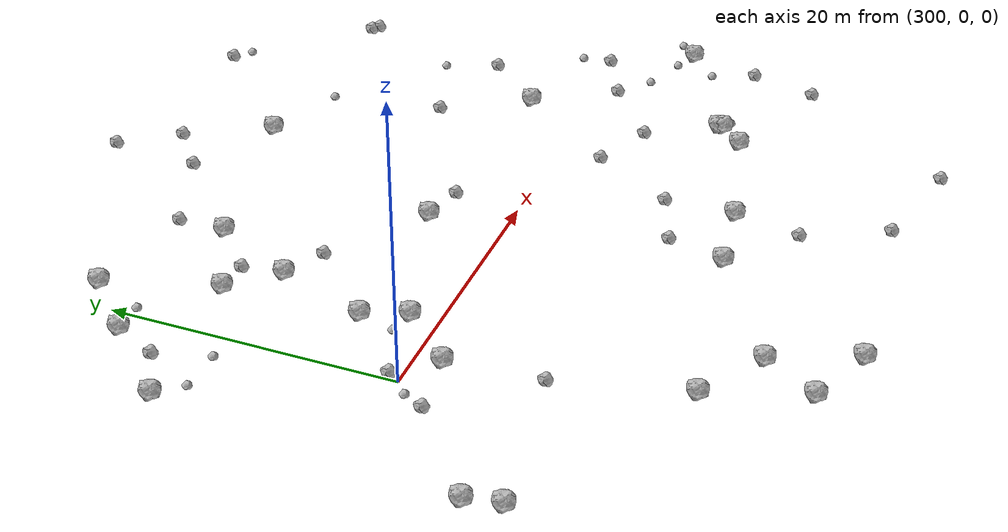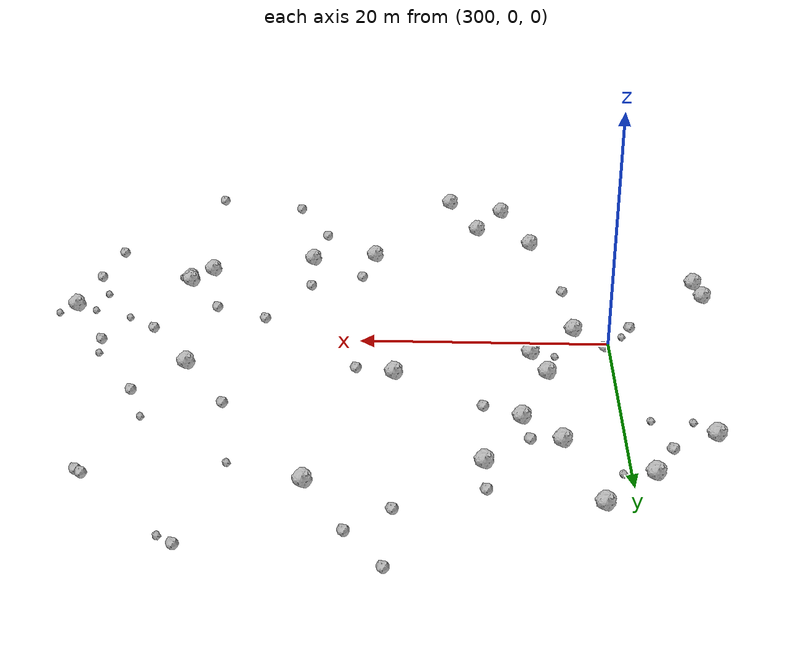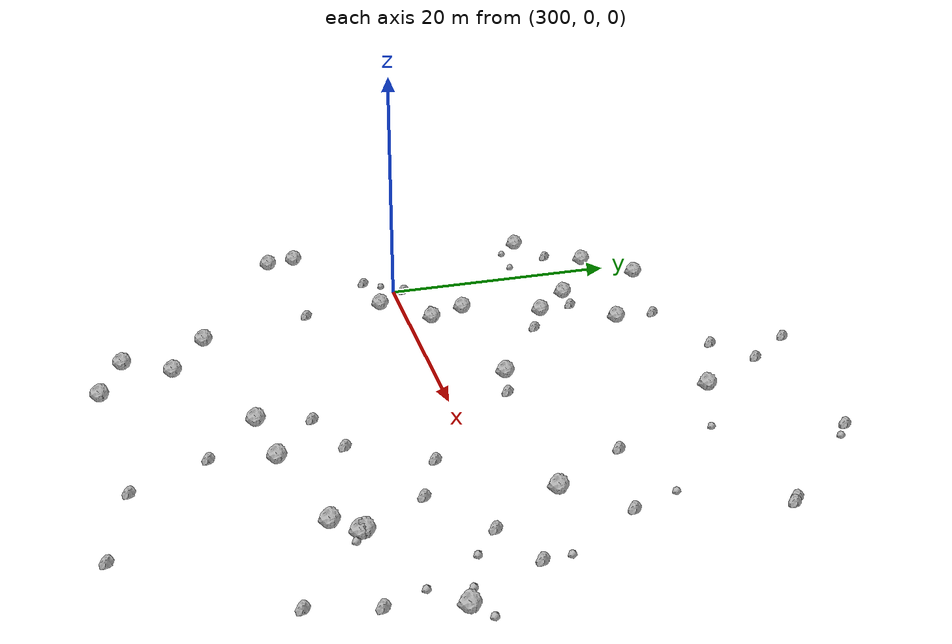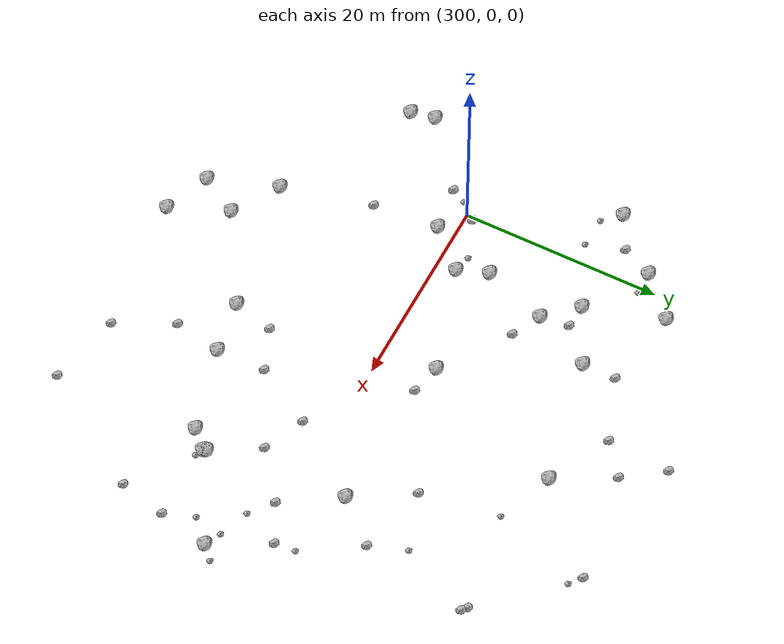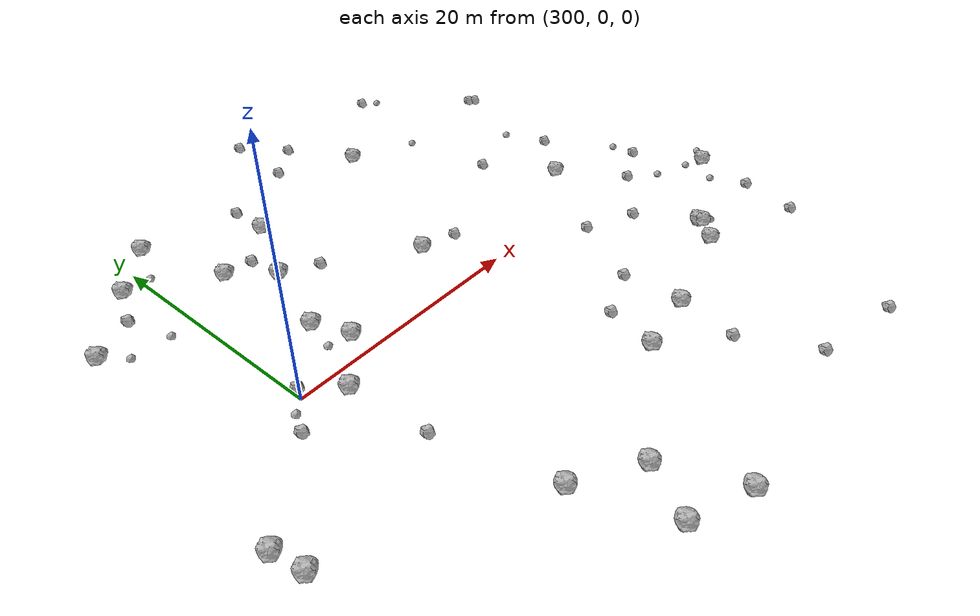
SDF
<sdf version="1.6">
 <world name="default">
  <include><uri>model://sun</uri></include>
  <model name="rock1_8_3">
   <include><uri>model://rock1</uri><pose>310.20276291903014 -20.25507205987672 0.5 0 0 0</pose></include>
  </model>
  <model name="rock1_8_4">
   <include><uri>model://rock1</uri><pose>317.1936163819916 5.363295040682473 0.5 0 0 0</pose></include>
  </model>
  <model name="rock1_8_5">
   <include><uri>model://rock1</uri><pose>307.90134416539934 -24.124418544849586 0.5 0 0 0</pose></include>
  </model>
  <model name="rock1_8_6">
   <include><uri>model://rock1</uri><pose>312.6273647187178 -25.97280719657884 0.5 0 0 0</pose></include>
  </model>
  <model name="rock1_8_7">
   <include><uri>model://rock1</uri><pose>307.5020998317875 11.466447877763535 0.5 0 0 0</pose></include>
  </model>
  <model name="rock1_8_8">
   <include><uri>model://rock1</uri><pose>319.3468862711502 -14.762599294620015 0.5 0 0 0</pose></include>
  </model>
  <model name="rock1_8_9">
   <include><uri>model://rock1</uri><pose>306.3958221091803 1.9877472315787337 0.5 0 0 0</pose></include>
  </model>
  <model name="rock1_8_10">
   <include><uri>model://rock1</uri><pose>344.0437984106869 -4.917947984021353 0.5 0 0 0</pose></include>
  </model>
  <model name="rock1_8_11">
   <include><uri>model://rock1</uri><pose>304.6730207668247 14.499140768944415 0.5 0 0 0</pose></include>
  </model>
  <model name="rock1_8_12">
   <include><uri>model://rock1</uri><pose>291.4310726975156 -7.779200077554542 0.5 0 0 0</pose></include>
  </model>
  <model name="rock1_8_13">
   <include><uri>model://rock1</uri><pose>291.8868722886966 -10.22096552344874 0.5 0 0 0</pose></include>
  </model>
  <model name="rock1_8_14">
   <include><uri>model://rock1</uri><pose>293.350947799069 13.41819007690318 0.5 0 0 0</pose></include>
  </model>
  <model name="rock1_8_15">
   <include><uri>model://rock1</uri><pose>302.739074573156 -1.7857541308000826 0.5 0 0 0</pose></include>
  </model>
  <model name="rock1_8_16">
   <include><uri>model://rock1</uri><pose>302.2652287217246 22.20480896334786 0.5 0 0 0</pose></include>
  </model>
  <model name="rock1_8_17">
   <include><uri>model://rock1</uri><pose>298.3789691322452 18.492246988287064 0.5 0 0 0</pose></include>
  </model>
  <model name="rock1_8_18">
   <include><uri>model://rock1</uri><pose>333.60127987132535 4.261753247741787 0.5 0 0 0</pose></include>
  </model>
  <model name="rock1_8_19">
   <include><uri>model://rock1</uri><pose>335.06255380691306 -9.587290368619165 0.5 0 0 0</pose></include>
  </model>
  <model name="rock1_8_20">
   <include><uri>model://rock1</uri><pose>305.53093416870973 -17.40641723471334 0.5 0 0 0</pose></include>
  </model>
  <model name="rock1_8_21">
   <include><uri>model://rock1</uri><pose>335.12000406821556 -9.903216581268989 0.5 0 0 0</pose></include>
  </model>
  <model name="rock1_8_22">
   <include><uri>model://rock1</uri><pose>305.2474955982054 5.008928062550972 0.5 0 0 0</pose></include>
  </model>
  <model name="rock1_8_23">
   <include><uri>model://rock1</uri><pose>324.7829824882892 -13.922589601897577 0.5 0 0 0</pose></include>
  </model>
  <model name="rock1_8_24">
   <include><uri>model://rock1</uri><pose>323.2147857695842 20.116373827085873 0.5 0 0 0</pose></include>
  </model>
  <model name="rock1_8_25">
   <include><uri>model://rock1</uri><pose>310.4498486783208 17.395900634350618 0.5 0 0 0</pose></include>
  </model>
  <model name="rock1_8_26">
   <include><uri>model://rock1</uri><pose>333.3953890128945 -11.62372655318676 0.5 0 0 0</pose></include>
  </model>
  <model name="rock2_8_0">
   <include><uri>model://rock2</uri><pose>342.8361970025438 -9.992885795279538 0.3 0 0 0</pose></include>
  </model>
  <model name="rock2_8_1">
   <include><uri>model://rock2</uri><pose>320.16796446612875 4.672241722740239 0.3 0 0 0</pose></include>
  </model>
  <model name="rock2_8_2">
   <include><uri>model://rock2</uri><pose>338.88391685294687 19.596873428873664 0.3 0 0 0</pose></include>
  </model>
  <model name="rock2_8_3">
   <include><uri>model://rock2</uri><pose>337.2534936267422 8.41939781264665 0.3 0 0 0</pose></include>
  </model>
  <model name="rock2_8_4">
   <include><uri>model://rock2</uri><pose>323.7899206621754 -18.67628227147968 0.3 0 0 0</pose></include>
  </model>
  <model name="rock2_8_5">
   <include><uri>model://rock2</uri><pose>336.98909116301155 -1.2263250222936044 0.3 0 0 0</pose></include>
  </model>
  <model name="rock2_8_6">
   <include><uri>model://rock2</uri><pose>334.05831887073253 -25.975329871795683 0.3 0 0 0</pose></include>
  </model>
  <model name="rock2_8_7">
   <include><uri>model://rock2</uri><pose>317.2771168491986 29.65452398075947 0.3 0 0 0</pose></include>
  </model>
  <model name="rock2_8_8">
   <include><uri>model://rock2</uri><pose>340.9367351096281 0.7316764552969985 0.3 0 0 0</pose></include>
  </model>
  <model name="rock2_8_9">
   <include><uri>model://rock2</uri><pose>328.0097503298806 -3.0803334719389888 0.3 0 0 0</pose></include>
  </model>
  <model name="rock2_8_10">
   <include><uri>model://rock2</uri><pose>296.75780682274967 15.367595406959147 0.3 0 0 0</pose></include>
  </model>
  <model name="rock2_8_11">
   <include><uri>model://rock2</uri><pose>310.34370625191167 10.011295242115601 0.3 0 0 0</pose></include>
  </model>
  <model name="rock2_8_12">
   <include><uri>model://rock2</uri><pose>307.0129277241142 14.374782175612502 0.3 0 0 0</pose></include>
  </model>
  <model name="rock2_8_13">
   <include><uri>model://rock2</uri><pose>303.19006799247154 -8.404636456161512 0.3 0 0 0</pose></include>
  </model>
  <model name="rock2_8_14">
   <include><uri>model://rock2</uri><pose>310.35068159201256 20.80156572512518 0.3 0 0 0</pose></include>
  </model>
  <model name="rock2_8_15">
   <include><uri>model://rock2</uri><pose>320.30254593893767 -10.668636907623764 0.3 0 0 0</pose></include>
  </model>
  <model name="rock2_8_16">
   <include><uri>model://rock2</uri><pose>320.04083022356053 25.82695490469466 0.3 0 0 0</pose></include>
  </model>
  <model name="rock2_8_17">
   <include><uri>model://rock2</uri><pose>298.0904067898253 -2.386307009309906 0.3 0 0 0</pose></include>
  </model>
  <model name="rock2_8_18">
   <include><uri>model://rock2</uri><pose>339.36751007192066 19.186012491971468 0.3 0 0 0</pose></include>
  </model>
  <model name="rock2_8_19">
   <include><uri>model://rock2</uri><pose>341.6987852894111 -14.700070310005657 0.3 0 0 0</pose></include>
  </model>
  <model name="rock2_8_20">
   <include><uri>model://rock2</uri><pose>326.60679783769285 -24.309259762357094 0.3 0 0 0</pose></include>
  </model>
  <model name="rock2_8_21">
   <include><uri>model://rock2</uri><pose>330.0388755551551 10.080954056844284 0.3 0 0 0</pose></include>
  </model>
  <model name="rock2_8_22">
   <include><uri>model://rock2</uri><pose>332.2113101193791 -4.89613098618555 0.3 0 0 0</pose></include>
  </model>
  <model name="rock2_8_23">
   <include><uri>model://rock2</uri><pose>316.8432562443277 23.27033164530932 0.3 0 0 0</pose></include>
  </model>
  <model name="rock2_8_24">
   <include><uri>model://rock2</uri><pose>324.6027065231085 -8.96760878414688 0.3 0 0 0</pose></include>
  </model>
  <model name="rock2_8_25">
   <include><uri>model://rock2</uri><pose>300.40083448806064 0.8402643267933421 0.3 0 0 0</pose></include>
  </model>
  <model name="rock2_8_26">
   <include><uri>model://rock2</uri><pose>331.2198482208113 27.59151257476536 0.3 0 0 0</pose></include>
  </model>
  <model name="rock3_8_0">
   <include><uri>model://rock3</uri><pose>328.75361590448205 17.911941072317994 0.2 0 0 0</pose></include>
  </model>
  <model name="rock3_8_1">
   <include><uri>model://rock3</uri><pose>304.4571729725848 2.3490356779577155 0.2 0 0 0</pose></include>
  </model>
  <model name="rock3_8_2">
   <include><uri>model://rock3</uri><pose>345.22786442788885 -3.7042940932311517 0.2 0 0 0</pose></include>
  </model>
  <model name="rock3_8_3">
   <include><uri>model://rock3</uri><pose>294.79640268957365 11.707408596379224 0.2 0 0 0</pose></include>
  </model>
  <model name="rock3_8_4">
   <include><uri>model://rock3</uri><pose>341.69893522834 -7.059660085417569 0.2 0 0 0</pose></include>
  </model>
  <model name="rock3_8_5">
   <include><uri>model://rock3</uri><pose>297.91432078380717 11.5862636845144 0.2 0 0 0</pose></include>
  </model>
  <model name="rock3_8_6">
   <include><uri>model://rock3</uri><pose>335.8986470561347 12.020057465870124 0.2 0 0 0</pose></include>
  </model>
  <model name="rock3_8_7">
   <include><uri>model://rock3</uri><pose>335.8031945853701 -10.311258472211705 0.2 0 0 0</pose></include>
  </model>
  <model name="rock3_8_8">
   <include><uri>model://rock3</uri><pose>332.3758768028252 26.586341980992223 0.2 0 0 0</pose></include>
  </model>
  <model name="rock3_8_9">
   <include><uri>model://rock3</uri><pose>300.6239327587746 18.512135579237437 0.2 0 0 0</pose></include>
  </model>
  <model name="rock3_8_10">
   <include><uri>model://rock3</uri><pose>342.27796543304004 -4.206793345953741 0.2 0 0 0</pose></include>
  </model>
  <model name="rock3_8_11">
   <include><uri>model://rock3</uri><pose>298.8418697666866 -0.9353958940543308 0.2 0 0 0</pose></include>
  </model>
  <model name="rock3_8_12">
   <include><uri>model://rock3</uri><pose>340.7176100329735 2.7699523119533467 0.2 0 0 0</pose></include>
  </model>
  <model name="rock3_8_13">
   <include><uri>model://rock3</uri><pose>339.2095891607478 -3.077625149849961 0.2 0 0 0</pose></include>
  </model>
 </world>
</sdf>
